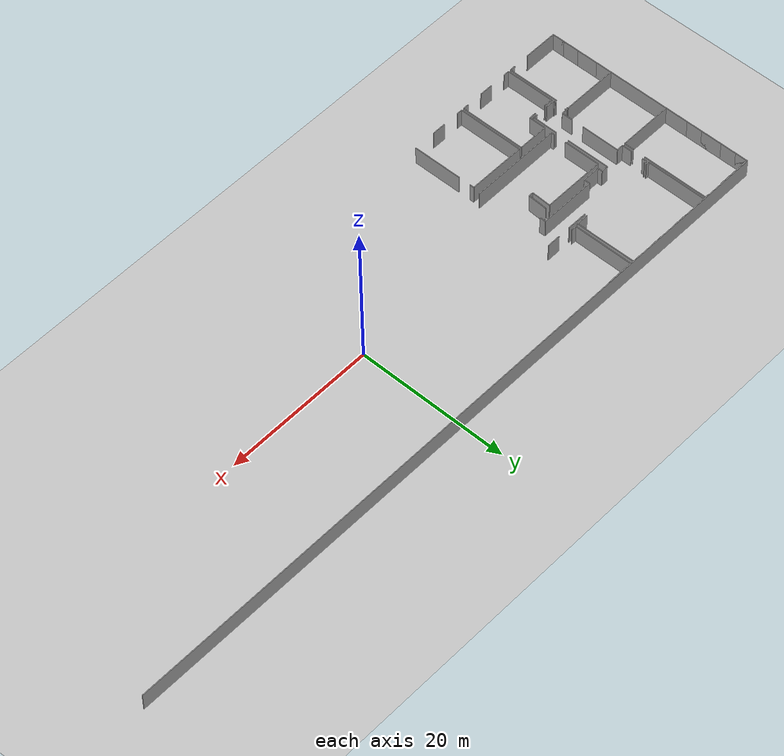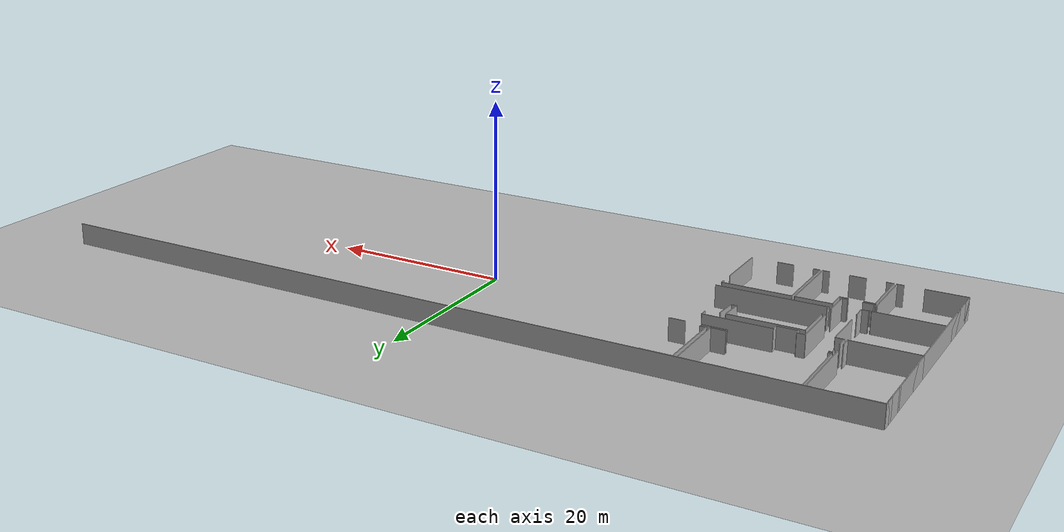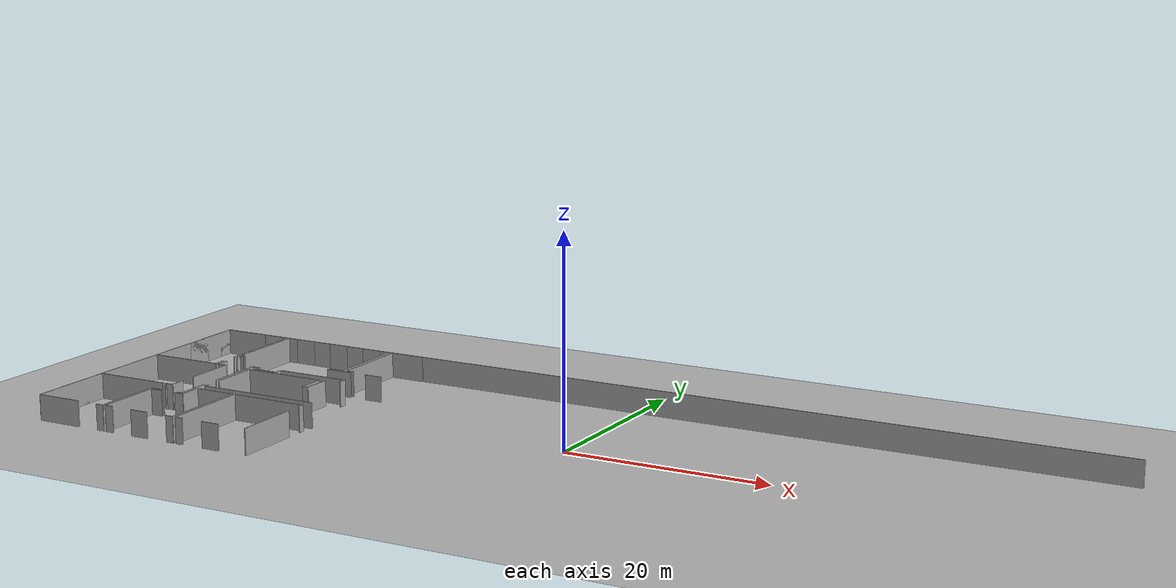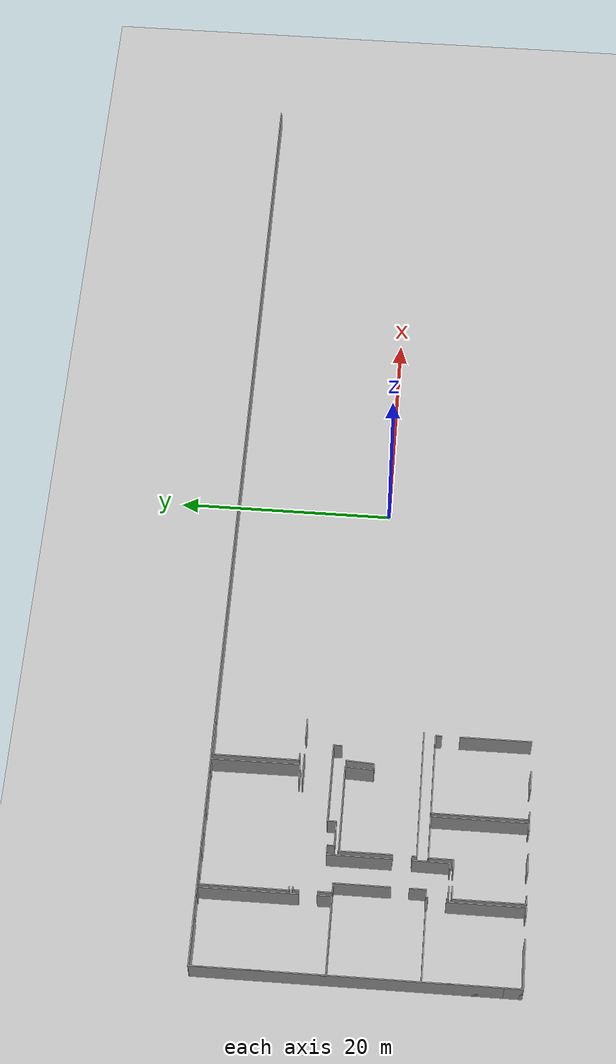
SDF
<sdf version="1.6">
 <world name="default">
  <model name="ground_plane">
   <static>1</static>
   <link name="link">
    <collision name="collision">
     <geometry><plane><normal>0 0 1</normal><size>100 100</size></plane></geometry>
     <surface><friction><ode><mu>100</mu><mu2>50</mu2></ode></friction></surface>
    </collision>
    <visual name="visual">
     <cast_shadows>0</cast_shadows>
     <geometry><plane><normal>0 0 1</normal><size>100 100</size></plane></geometry>
     <material>
      <script><uri>file://media/materials/scripts/gazebo.material</uri><name>Gazebo/Grey</name></script>
     </material>
    </visual>
   </link>
  </model>
  <model name="0510032262_A_40_1_104">
   <static>1</static>
   <link name="Wall_0">
    <collision name="Wall_0_Collision">
     <geometry><box><size>7.26845829235 0.1 2.5</size></box></geometry>
     <pose>3.63422914618 0 1.25 0 0 0</pose>
    </collision>
    <visual name="Wall_0_Visual">
     <pose>3.63422914618 0 1.25 0 0 0</pose>
     <geometry><box><size>7.26845829235 0.1 2.5</size></box></geometry>
     <material>
      <script><uri>file://media/materials/scripts/gazebo.material</uri><name>Gazebo/Grey</name></script>
      <ambient>1 1 1 1</ambient>
     </material>
    </visual>
    <pose>7.26845829235 -11.874861186 0 0 0 3.14159265359</pose>
   </link>
   <link name="Wall_1">
    <collision name="Wall_1_Collision">
     <geometry><box><size>3.11844401434 0.1 2.5</size></box></geometry>
     <pose>1.55922200717 0 1.25 0 0 0</pose>
    </collision>
    <visual name="Wall_1_Visual">
     <pose>1.55922200717 0 1.25 0 0 0</pose>
     <geometry><box><size>3.11844401434 0.1 2.5</size></box></geometry>
     <material>
      <script><uri>file://media/materials/scripts/gazebo.material</uri><name>Gazebo/Grey</name></script>
      <ambient>1 1 1 1</ambient>
     </material>
    </visual>
    <pose>0.0 -11.874861186 0 0 0 1.57079632679</pose>
   </link>
   <link name="Wall_2">
    <collision name="Wall_2_Collision">
     <geometry><box><size>2.82285750547 0.1 2.5</size></box></geometry>
     <pose>1.41142875274 0 1.25 0 0 0</pose>
    </collision>
    <visual name="Wall_2_Visual">
     <pose>1.41142875274 0 1.25 0 0 0</pose>
     <geometry><box><size>2.82285750547 0.1 2.5</size></box></geometry>
     <material>
      <script><uri>file://media/materials/scripts/gazebo.material</uri><name>Gazebo/Grey</name></script>
      <ambient>1 1 1 1</ambient>
     </material>
    </visual>
    <pose>0.0 -6.63032649047 0 0 0 1.57079632679</pose>
   </link>
   <link name="Wall_3">
    <collision name="Wall_3_Collision">
     <geometry><box><size>1.63987689184 0.1 2.5</size></box></geometry>
     <pose>0.819938445918 0 1.25 0 0 0</pose>
    </collision>
    <visual name="Wall_3_Visual">
     <pose>0.819938445918 0 1.25 0 0 0</pose>
     <geometry><box><size>1.63987689184 0.1 2.5</size></box></geometry>
     <material>
      <script><uri>file://media/materials/scripts/gazebo.material</uri><name>Gazebo/Grey</name></script>
      <ambient>1 1 1 1</ambient>
     </material>
    </visual>
    <pose>0.0 -1.69584668592 0 0 0 1.57079632679</pose>
   </link>
   <link name="Wall_4">
    <collision name="Wall_4_Collision">
     <geometry><box><size>4.5400260177 0.1 2.5</size></box></geometry>
     <pose>2.27001300885 0 1.25 0 0 0</pose>
    </collision>
    <visual name="Wall_4_Visual">
     <pose>2.27001300885 0 1.25 0 0 0</pose>
     <geometry><box><size>4.5400260177 0.1 2.5</size></box></geometry>
     <material>
      <script><uri>file://media/materials/scripts/gazebo.material</uri><name>Gazebo/Grey</name></script>
      <ambient>1 1 1 1</ambient>
     </material>
    </visual>
    <pose>0.0 -0.0559697940794 0 0 0 0.0</pose>
   </link>
   <link name="Wall_5">
    <collision name="Wall_5_Collision">
     <geometry><box><size>0.587873211283 0.1 2.5</size></box></geometry>
     <pose>0.293936605641 0 1.25 0 0 0</pose>
    </collision>
    <visual name="Wall_5_Visual">
     <pose>0.293936605641 0 1.25 0 0 0</pose>
     <geometry><box><size>0.587873211283 0.1 2.5</size></box></geometry>
     <material>
      <script><uri>file://media/materials/scripts/gazebo.material</uri><name>Gazebo/Grey</name></script>
      <ambient>1 1 1 1</ambient>
     </material>
    </visual>
    <pose>6.66611669892 -0.0559697940794 0 0 0 0.0</pose>
   </link>
   <link name="Wall_6">
    <collision name="Wall_6_Collision">
     <geometry><box><size>8.90338547451 0.1 2.5</size></box></geometry>
     <pose>4.45169273725 0 1.25 0 0 0</pose>
    </collision>
    <visual name="Wall_6_Visual">
     <pose>4.45169273725 0 1.25 0 0 0</pose>
     <geometry><box><size>8.90338547451 0.1 2.5</size></box></geometry>
     <material>
      <script><uri>file://media/materials/scripts/gazebo.material</uri><name>Gazebo/Grey</name></script>
      <ambient>1 1 1 1</ambient>
     </material>
    </visual>
    <pose>7.25398991021 -0.0559697940794 0 0 0 -1.57079632679</pose>
   </link>
   <link name="Wall_7">
    <collision name="Wall_7_Collision">
     <geometry><box><size>1.3018540469 0.1 2.5</size></box></geometry>
     <pose>0.650927023448 0 1.25 0 0 0</pose>
    </collision>
    <visual name="Wall_7_Visual">
     <pose>0.650927023448 0 1.25 0 0 0</pose>
     <geometry><box><size>1.3018540469 0.1 2.5</size></box></geometry>
     <material>
      <script><uri>file://media/materials/scripts/gazebo.material</uri><name>Gazebo/Grey</name></script>
      <ambient>1 1 1 1</ambient>
     </material>
    </visual>
    <pose>7.25398991021 -10.5730875401 0 0 0 -1.55968242349</pose>
   </link>
   <link name="Wall_8">
    <collision name="Wall_8_Collision">
     <geometry><box><size>0.55144842466 0.1 2.5</size></box></geometry>
     <pose>0.27572421233 0 1.25 0 0 0</pose>
    </collision>
    <visual name="Wall_8_Visual">
     <pose>0.27572421233 0 1.25 0 0 0</pose>
     <geometry><box><size>0.55144842466 0.1 2.5</size></box></geometry>
     <material>
      <script><uri>file://media/materials/scripts/gazebo.material</uri><name>Gazebo/Grey</name></script>
      <ambient>1 1 1 1</ambient>
     </material>
    </visual>
    <pose>11.1216169052 -22.0429609417 0 0 0 3.14159265359</pose>
   </link>
   <link name="Wall_9">
    <collision name="Wall_9_Collision">
     <geometry><box><size>1.21001364343 0.1 2.5</size></box></geometry>
     <pose>0.605006821715 0 1.25 0 0 0</pose>
    </collision>
    <visual name="Wall_9_Visual">
     <pose>0.605006821715 0 1.25 0 0 0</pose>
     <geometry><box><size>1.21001364343 0.1 2.5</size></box></geometry>
     <material>
      <script><uri>file://media/materials/scripts/gazebo.material</uri><name>Gazebo/Grey</name></script>
      <ambient>1 1 1 1</ambient>
     </material>
    </visual>
    <pose>8.97915410731 -22.0429609417 0 0 0 3.14159265359</pose>
   </link>
   <link name="Wall_10">
    <collision name="Wall_10_Collision">
     <geometry><box><size>0.17920487356 0.1 2.5</size></box></geometry>
     <pose>0.0896024367801 0 1.25 0 0 0</pose>
    </collision>
    <visual name="Wall_10_Visual">
     <pose>0.0896024367801 0 1.25 0 0 0</pose>
     <geometry><box><size>0.17920487356 0.1 2.5</size></box></geometry>
     <material>
      <script><uri>file://media/materials/scripts/gazebo.material</uri><name>Gazebo/Grey</name></script>
      <ambient>1 1 1 1</ambient>
     </material>
    </visual>
    <pose>7.76914046388 -22.0429609417 0 0 0 1.57079632679</pose>
   </link>
   <link name="Wall_11">
    <collision name="Wall_11_Collision">
     <geometry><box><size>0.203065012533 0.1 2.5</size></box></geometry>
     <pose>0.101532506266 0 1.25 0 0 0</pose>
    </collision>
    <visual name="Wall_11_Visual">
     <pose>0.101532506266 0 1.25 0 0 0</pose>
     <geometry><box><size>0.203065012533 0.1 2.5</size></box></geometry>
     <material>
      <script><uri>file://media/materials/scripts/gazebo.material</uri><name>Gazebo/Grey</name></script>
      <ambient>1 1 1 1</ambient>
     </material>
    </visual>
    <pose>7.76914046388 -20.2814988736 0 0 0 1.57079632679</pose>
   </link>
   <link name="Wall_12">
    <collision name="Wall_12_Collision">
     <geometry><box><size>0.723672938414 0.1 2.5</size></box></geometry>
     <pose>0.361836469207 0 1.25 0 0 0</pose>
    </collision>
    <visual name="Wall_12_Visual">
     <pose>0.361836469207 0 1.25 0 0 0</pose>
     <geometry><box><size>0.723672938414 0.1 2.5</size></box></geometry>
     <material>
      <script><uri>file://media/materials/scripts/gazebo.material</uri><name>Gazebo/Grey</name></script>
      <ambient>1 1 1 1</ambient>
     </material>
    </visual>
    <pose>7.76914046388 -20.0784338611 0 0 0 0.0</pose>
   </link>
   <link name="Wall_13">
    <collision name="Wall_13_Collision">
     <geometry><box><size>1.51473807786 0.1 2.5</size></box></geometry>
     <pose>0.757369038931 0 1.25 0 0 0</pose>
    </collision>
    <visual name="Wall_13_Visual">
     <pose>0.757369038931 0 1.25 0 0 0</pose>
     <geometry><box><size>1.51473807786 0.1 2.5</size></box></geometry>
     <material>
      <script><uri>file://media/materials/scripts/gazebo.material</uri><name>Gazebo/Grey</name></script>
      <ambient>1 1 1 1</ambient>
     </material>
    </visual>
    <pose>8.49281340229 -20.0784338611 0 0 0 1.57079632679</pose>
   </link>
   <link name="Wall_14">
    <collision name="Wall_14_Collision">
     <geometry><box><size>5.11013104039 0.1 2.5</size></box></geometry>
     <pose>2.5550655202 0 1.25 0 0 0</pose>
    </collision>
    <visual name="Wall_14_Visual">
     <pose>2.5550655202 0 1.25 0 0 0</pose>
     <geometry><box><size>5.11013104039 0.1 2.5</size></box></geometry>
     <material>
      <script><uri>file://media/materials/scripts/gazebo.material</uri><name>Gazebo/Grey</name></script>
      <ambient>1 1 1 1</ambient>
     </material>
    </visual>
    <pose>8.49281340229 -16.9898150205 0 0 0 1.57079632679</pose>
   </link>
   <link name="Wall_15">
    <collision name="Wall_15_Collision">
     <geometry><box><size>0.889297839261 0.1 2.5</size></box></geometry>
     <pose>0.444648919631 0 1.25 0 0 0</pose>
    </collision>
    <visual name="Wall_15_Visual">
     <pose>0.444648919631 0 1.25 0 0 0</pose>
     <geometry><box><size>0.889297839261 0.1 2.5</size></box></geometry>
     <material>
      <script><uri>file://media/materials/scripts/gazebo.material</uri><name>Gazebo/Grey</name></script>
      <ambient>1 1 1 1</ambient>
     </material>
    </visual>
    <pose>8.49281340229 -11.8796839801 0 0 0 3.14159265359</pose>
   </link>
   <link name="Wall_16">
    <collision name="Wall_16_Collision">
     <geometry><box><size>1.3100231621 0.1 2.5</size></box></geometry>
     <pose>0.655011581051 0 1.25 0 0 0</pose>
    </collision>
    <visual name="Wall_16_Visual">
     <pose>0.655011581051 0 1.25 0 0 0</pose>
     <geometry><box><size>1.3100231621 0.1 2.5</size></box></geometry>
     <material>
      <script><uri>file://media/materials/scripts/gazebo.material</uri><name>Gazebo/Grey</name></script>
      <ambient>1 1 1 1</ambient>
     </material>
    </visual>
    <pose>7.60351556303 -11.8796839801 0 0 0 1.57079632679</pose>
   </link>
   <link name="Wall_17">
    <collision name="Wall_17_Collision">
     <geometry><box><size>0.561601675286 0.1 2.5</size></box></geometry>
     <pose>0.280800837643 0 1.25 0 0 0</pose>
    </collision>
    <visual name="Wall_17_Visual">
     <pose>0.280800837643 0 1.25 0 0 0</pose>
     <geometry><box><size>0.561601675286 0.1 2.5</size></box></geometry>
     <material>
      <script><uri>file://media/materials/scripts/gazebo.material</uri><name>Gazebo/Grey</name></script>
      <ambient>1 1 1 1</ambient>
     </material>
    </visual>
    <pose>7.60351556303 -8.95833994352 0 0 0 1.57079632679</pose>
   </link>
   <link name="Wall_18">
    <collision name="Wall_18_Collision">
     <geometry><box><size>0.356759843894 0.1 2.5</size></box></geometry>
     <pose>0.178379921947 0 1.25 0 0 0</pose>
    </collision>
    <visual name="Wall_18_Visual">
     <pose>0.178379921947 0 1.25 0 0 0</pose>
     <geometry><box><size>0.356759843894 0.1 2.5</size></box></geometry>
     <material>
      <script><uri>file://media/materials/scripts/gazebo.material</uri><name>Gazebo/Grey</name></script>
      <ambient>1 1 1 1</ambient>
     </material>
    </visual>
    <pose>7.60351556303 -8.39673826824 0 0 0 0.0</pose>
   </link>
   <link name="Wall_19">
    <collision name="Wall_19_Collision">
     <geometry><box><size>2.68705777834 0.1 2.5</size></box></geometry>
     <pose>1.34352888917 0 1.25 0 0 0</pose>
    </collision>
    <visual name="Wall_19_Visual">
     <pose>1.34352888917 0 1.25 0 0 0</pose>
     <geometry><box><size>2.68705777834 0.1 2.5</size></box></geometry>
     <material>
      <script><uri>file://media/materials/scripts/gazebo.material</uri><name>Gazebo/Grey</name></script>
      <ambient>1 1 1 1</ambient>
     </material>
    </visual>
    <pose>18.0830662817 -8.39673826824 0 0 0 0.0</pose>
   </link>
   <link name="Wall_20">
    <collision name="Wall_20_Collision">
     <geometry><box><size>1.77986483485 0.1 2.5</size></box></geometry>
     <pose>0.889932417426 0 1.25 0 0 0</pose>
    </collision>
    <visual name="Wall_20_Visual">
     <pose>0.889932417426 0 1.25 0 0 0</pose>
     <geometry><box><size>1.77986483485 0.1 2.5</size></box></geometry>
     <material>
      <script><uri>file://media/materials/scripts/gazebo.material</uri><name>Gazebo/Grey</name></script>
      <ambient>1 1 1 1</ambient>
     </material>
    </visual>
    <pose>22.4537868452 -8.39673826824 0 0 0 0.0</pose>
   </link>
   <link name="Wall_39">
    <collision name="Wall_39_Collision">
     <geometry><box><size>0.79652251166 0.1 2.5</size></box></geometry>
     <pose>0.39826125583 0 1.25 0 0 0</pose>
    </collision>
    <visual name="Wall_39_Visual">
     <pose>0.39826125583 0 1.25 0 0 0</pose>
     <geometry><box><size>0.79652251166 0.1 2.5</size></box></geometry>
     <material>
      <script><uri>file://media/materials/scripts/gazebo.material</uri><name>Gazebo/Grey</name></script>
      <ambient>1 1 1 1</ambient>
     </material>
    </visual>
    <pose>21.8065171177 -11.750103119 0 0 0 1.57079632679</pose>
   </link>
   <link name="Wall_40">
    <collision name="Wall_40_Collision">
     <geometry><box><size>7.44131738427 0.1 2.5</size></box></geometry>
     <pose>3.72065869213 0 1.25 0 0 0</pose>
    </collision>
    <visual name="Wall_40_Visual">
     <pose>3.72065869213 0 1.25 0 0 0</pose>
     <geometry><box><size>7.44131738427 0.1 2.5</size></box></geometry>
     <material>
      <script><uri>file://media/materials/scripts/gazebo.material</uri><name>Gazebo/Grey</name></script>
      <ambient>1 1 1 1</ambient>
     </material>
    </visual>
    <pose>21.8065171177 -10.9535806073 0 0 0 3.14159265359</pose>
   </link>
   <link name="Wall_41">
    <collision name="Wall_41_Collision">
     <geometry><box><size>0.770758638195 0.1 2.5</size></box></geometry>
     <pose>0.385379319098 0 1.25 0 0 0</pose>
    </collision>
    <visual name="Wall_41_Visual">
     <pose>0.385379319098 0 1.25 0 0 0</pose>
     <geometry><box><size>0.770758638195 0.1 2.5</size></box></geometry>
     <material>
      <script><uri>file://media/materials/scripts/gazebo.material</uri><name>Gazebo/Grey</name></script>
      <ambient>1 1 1 1</ambient>
     </material>
    </visual>
    <pose>14.3651997335 -10.9535806073 0 0 0 -1.57079632679</pose>
   </link>
   <link name="Wall_42">
    <collision name="Wall_42_Collision">
     <geometry><box><size>2.32928260939 0.1 2.5</size></box></geometry>
     <pose>1.16464130469 0 1.25 0 0 0</pose>
    </collision>
    <visual name="Wall_42_Visual">
     <pose>1.16464130469 0 1.25 0 0 0</pose>
     <geometry><box><size>2.32928260939 0.1 2.5</size></box></geometry>
     <material>
      <script><uri>file://media/materials/scripts/gazebo.material</uri><name>Gazebo/Grey</name></script>
      <ambient>1 1 1 1</ambient>
     </material>
    </visual>
    <pose>14.3651997335 -11.7243392455 0 0 0 3.14159265359</pose>
   </link>
   <link name="Wall_43">
    <collision name="Wall_43_Collision">
     <geometry><box><size>0.616809975569 0.1 2.5</size></box></geometry>
     <pose>0.308404987784 0 1.25 0 0 0</pose>
    </collision>
    <visual name="Wall_43_Visual">
     <pose>0.308404987784 0 1.25 0 0 0</pose>
     <geometry><box><size>0.616809975569 0.1 2.5</size></box></geometry>
     <material>
      <script><uri>file://media/materials/scripts/gazebo.material</uri><name>Gazebo/Grey</name></script>
      <ambient>1 1 1 1</ambient>
     </material>
    </visual>
    <pose>12.0359171241 -11.7243392455 0 0 0 1.57079632679</pose>
   </link>
   <link name="Wall_44">
    <collision name="Wall_44_Collision">
     <geometry><box><size>0.878002347939 0.1 2.5</size></box></geometry>
     <pose>0.43900117397 0 1.25 0 0 0</pose>
    </collision>
    <visual name="Wall_44_Visual">
     <pose>0.43900117397 0 1.25 0 0 0</pose>
     <geometry><box><size>0.878002347939 0.1 2.5</size></box></geometry>
     <material>
      <script><uri>file://media/materials/scripts/gazebo.material</uri><name>Gazebo/Grey</name></script>
      <ambient>1 1 1 1</ambient>
     </material>
    </visual>
    <pose>12.0359171241 -11.1075292699 0 0 0 3.14159265359</pose>
   </link>
   <link name="Wall_45">
    <collision name="Wall_45_Collision">
     <geometry><box><size>5.80562870832 0.1 2.5</size></box></geometry>
     <pose>2.90281435416 0 1.25 0 0 0</pose>
    </collision>
    <visual name="Wall_45_Visual">
     <pose>2.90281435416 0 1.25 0 0 0</pose>
     <geometry><box><size>5.80562870832 0.1 2.5</size></box></geometry>
     <material>
      <script><uri>file://media/materials/scripts/gazebo.material</uri><name>Gazebo/Grey</name></script>
      <ambient>1 1 1 1</ambient>
     </material>
    </visual>
    <pose>11.1579147762 -11.1075292699 0 0 0 -1.57079632679</pose>
   </link>
   <link name="Wall_46">
    <collision name="Wall_46_Collision">
     <geometry><box><size>3.38173492852 0.1 2.5</size></box></geometry>
     <pose>1.69086746426 0 1.25 0 0 0</pose>
    </collision>
    <visual name="Wall_46_Visual">
     <pose>1.69086746426 0 1.25 0 0 0</pose>
     <geometry><box><size>3.38173492852 0.1 2.5</size></box></geometry>
     <material>
      <script><uri>file://media/materials/scripts/gazebo.material</uri><name>Gazebo/Grey</name></script>
      <ambient>1 1 1 1</ambient>
     </material>
    </visual>
    <pose>11.1579147762 -18.6614208205 0 0 0 -1.58153003856</pose>
   </link>
   <link name="Wall_48">
    <collision name="Wall_48_Collision">
     <geometry><box><size>0.690928705143 0.1 2.5</size></box></geometry>
     <pose>0.345464352572 0 1.25 0 0 0</pose>
    </collision>
    <visual name="Wall_48_Visual">
     <pose>0.345464352572 0 1.25 0 0 0</pose>
     <geometry><box><size>0.690928705143 0.1 2.5</size></box></geometry>
     <material>
      <script><uri>file://media/materials/scripts/gazebo.material</uri><name>Gazebo/Grey</name></script>
      <ambient>1 1 1 1</ambient>
     </material>
    </visual>
    <pose>20.7892883206 -7.97271313894 0 0 0 3.14159265359</pose>
   </link>
   <link name="Wall_49">
    <collision name="Wall_49_Collision">
     <geometry><box><size>7.9142050322 0.1 2.5</size></box></geometry>
     <pose>3.9571025161 0 1.25 0 0 0</pose>
    </collision>
    <visual name="Wall_49_Visual">
     <pose>3.9571025161 0 1.25 0 0 0</pose>
     <geometry><box><size>7.9142050322 0.1 2.5</size></box></geometry>
     <material>
      <script><uri>file://media/materials/scripts/gazebo.material</uri><name>Gazebo/Grey</name></script>
      <ambient>1 1 1 1</ambient>
     </material>
    </visual>
    <pose>20.0983596154 -7.97271313894 0 0 0 1.57079632679</pose>
   </link>
   <link name="Wall_50">
    <collision name="Wall_50_Collision">
     <geometry><box><size>3.526097027 0.1 2.5</size></box></geometry>
     <pose>1.7630485135 0 1.25 0 0 0</pose>
    </collision>
    <visual name="Wall_50_Visual">
     <pose>1.7630485135 0 1.25 0 0 0</pose>
     <geometry><box><size>3.526097027 0.1 2.5</size></box></geometry>
     <material>
      <script><uri>file://media/materials/scripts/gazebo.material</uri><name>Gazebo/Grey</name></script>
      <ambient>1 1 1 1</ambient>
     </material>
    </visual>
    <pose>20.0983596154 -0.058508106736 0 0 0 0.0</pose>
   </link>
   <link name="Wall_88">
    <collision name="Wall_88_Collision">
     <geometry><box><size>2.58827991481 0.1 2.5</size></box></geometry>
     <pose>1.29413995741 0 1.25 0 0 0</pose>
    </collision>
    <visual name="Wall_88_Visual">
     <pose>1.29413995741 0 1.25 0 0 0</pose>
     <geometry><box><size>2.58827991481 0.1 2.5</size></box></geometry>
     <material>
      <script><uri>file://media/materials/scripts/gazebo.material</uri><name>Gazebo/Grey</name></script>
      <ambient>1 1 1 1</ambient>
     </material>
    </visual>
    <pose>20.3699590697 -12.1516641812 0 0 0 -1.62829672246</pose>
   </link>
   <link name="Wall_89">
    <collision name="Wall_89_Collision">
     <geometry><box><size>0.587790814466 0.1 2.5</size></box></geometry>
     <pose>0.293895407233 0 1.25 0 0 0</pose>
    </collision>
    <visual name="Wall_89_Visual">
     <pose>0.293895407233 0 1.25 0 0 0</pose>
     <geometry><box><size>0.587790814466 0.1 2.5</size></box></geometry>
     <material>
      <script><uri>file://media/materials/scripts/gazebo.material</uri><name>Gazebo/Grey</name></script>
      <ambient>1 1 1 1</ambient>
     </material>
    </visual>
    <pose>20.221213948 -14.7356664657 0 0 0 3.12928491836</pose>
   </link>
   <link name="Wall_90">
    <collision name="Wall_90_Collision">
     <geometry><box><size>2.58584399931 0.1 2.5</size></box></geometry>
     <pose>1.29292199966 0 1.25 0 0 0</pose>
    </collision>
    <visual name="Wall_90_Visual">
     <pose>1.29292199966 0 1.25 0 0 0</pose>
     <geometry><box><size>2.58584399931 0.1 2.5</size></box></geometry>
     <material>
      <script><uri>file://media/materials/scripts/gazebo.material</uri><name>Gazebo/Grey</name></script>
      <ambient>1 1 1 1</ambient>
     </material>
    </visual>
    <pose>19.6334676524 -14.7284322746 0 0 0 1.52592129538</pose>
   </link>
   <link name="Wall_91">
    <collision name="Wall_91_Collision">
     <geometry><box><size>8.2017958562 0.1 2.5</size></box></geometry>
     <pose>4.1008979281 0 1.25 0 0 0</pose>
    </collision>
    <visual name="Wall_91_Visual">
     <pose>4.1008979281 0 1.25 0 0 0</pose>
     <geometry><box><size>8.2017958562 0.1 2.5</size></box></geometry>
     <material>
      <script><uri>file://media/materials/scripts/gazebo.material</uri><name>Gazebo/Grey</name></script>
      <ambient>1 1 1 1</ambient>
     </material>
    </visual>
    <pose>19.7494685408 -12.145191484 0 0 0 3.14159265359</pose>
   </link>
   <link name="Wall_92">
    <collision name="Wall_92_Collision">
     <geometry><box><size>4.81594060348 0.1 2.5</size></box></geometry>
     <pose>2.40797030174 0 1.25 0 0 0</pose>
    </collision>
    <visual name="Wall_92_Visual">
     <pose>2.40797030174 0 1.25 0 0 0</pose>
     <geometry><box><size>4.81594060348 0.1 2.5</size></box></geometry>
     <material>
      <script><uri>file://media/materials/scripts/gazebo.material</uri><name>Gazebo/Grey</name></script>
      <ambient>1 1 1 1</ambient>
     </material>
    </visual>
    <pose>11.5476726846 -12.145191484 0 0 0 -1.57079632679</pose>
   </link>
   <link name="Wall_93">
    <collision name="Wall_93_Collision">
     <geometry><box><size>0.469587841482 0.1 2.5</size></box></geometry>
     <pose>0.234793920741 0 1.25 0 0 0</pose>
    </collision>
    <visual name="Wall_93_Visual">
     <pose>0.234793920741 0 1.25 0 0 0</pose>
     <geometry><box><size>0.469587841482 0.1 2.5</size></box></geometry>
     <material>
      <script><uri>file://media/materials/scripts/gazebo.material</uri><name>Gazebo/Grey</name></script>
      <ambient>1 1 1 1</ambient>
     </material>
    </visual>
    <pose>11.5476726846 -18.6062125202 0 0 0 -1.57079632679</pose>
   </link>
   <link name="Wall_94">
    <collision name="Wall_94_Collision">
     <geometry><box><size>12.162351582 0.1 2.5</size></box></geometry>
     <pose>6.08117579101 0 1.25 0 0 0</pose>
    </collision>
    <visual name="Wall_94_Visual">
     <pose>6.08117579101 0 1.25 0 0 0</pose>
     <geometry><box><size>12.162351582 0.1 2.5</size></box></geometry>
     <material>
      <script><uri>file://media/materials/scripts/gazebo.material</uri><name>Gazebo/Grey</name></script>
      <ambient>1 1 1 1</ambient>
     </material>
    </visual>
    <pose>11.5476726846 -19.0758003617 0 0 0 0.00208702608391</pose>
   </link>
   <link name="Wall_95">
    <collision name="Wall_95_Collision">
     <geometry><box><size>0.752863533966 0.1 2.5</size></box></geometry>
     <pose>0.376431766983 0 1.25 0 0 0</pose>
    </collision>
    <visual name="Wall_95_Visual">
     <pose>0.376431766983 0 1.25 0 0 0</pose>
     <geometry><box><size>0.752863533966 0.1 2.5</size></box></geometry>
     <material>
      <script><uri>file://media/materials/scripts/gazebo.material</uri><name>Gazebo/Grey</name></script>
      <ambient>1 1 1 1</ambient>
     </material>
    </visual>
    <pose>7.46225846369 -28.8584573405 0 0 0 3.14159265359</pose>
   </link>
   <link name="Wall_96">
    <collision name="Wall_96_Collision">
     <geometry><box><size>4.55639813434 0.1 2.5</size></box></geometry>
     <pose>2.27819906717 0 1.25 0 0 0</pose>
    </collision>
    <visual name="Wall_96_Visual">
     <pose>2.27819906717 0 1.25 0 0 0</pose>
     <geometry><box><size>4.55639813434 0.1 2.5</size></box></geometry>
     <material>
      <script><uri>file://media/materials/scripts/gazebo.material</uri><name>Gazebo/Grey</name></script>
      <ambient>1 1 1 1</ambient>
     </material>
    </visual>
    <pose>4.55639813434 -28.8584573405 0 0 0 3.14159265359</pose>
   </link>
   <link name="Wall_97">
    <collision name="Wall_97_Collision">
     <geometry><box><size>1.65396452708 0.1 2.5</size></box></geometry>
     <pose>0.82698226354 0 1.25 0 0 0</pose>
    </collision>
    <visual name="Wall_97_Visual">
     <pose>0.82698226354 0 1.25 0 0 0</pose>
     <geometry><box><size>1.65396452708 0.1 2.5</size></box></geometry>
     <material>
      <script><uri>file://media/materials/scripts/gazebo.material</uri><name>Gazebo/Grey</name></script>
      <ambient>1 1 1 1</ambient>
     </material>
    </visual>
    <pose>0.0 -28.8584573405 0 0 0 1.57079632679</pose>
   </link>
   <link name="Wall_98">
    <collision name="Wall_98_Collision">
     <geometry><box><size>2.81219659232 0.1 2.5</size></box></geometry>
     <pose>1.40609829616 0 1.25 0 0 0</pose>
    </collision>
    <visual name="Wall_98_Visual">
     <pose>1.40609829616 0 1.25 0 0 0</pose>
     <geometry><box><size>2.81219659232 0.1 2.5</size></box></geometry>
     <material>
      <script><uri>file://media/materials/scripts/gazebo.material</uri><name>Gazebo/Grey</name></script>
      <ambient>1 1 1 1</ambient>
     </material>
    </visual>
    <pose>0.0 -25.0681219659 0 0 0 1.57079632679</pose>
   </link>
   <link name="Wall_99">
    <collision name="Wall_99_Collision">
     <geometry><box><size>7.46898499223 0.1 2.5</size></box></geometry>
     <pose>3.73449249611 0 1.25 0 0 0</pose>
    </collision>
    <visual name="Wall_99_Visual">
     <pose>3.73449249611 0 1.25 0 0 0</pose>
     <geometry><box><size>7.46898499223 0.1 2.5</size></box></geometry>
     <material>
      <script><uri>file://media/materials/scripts/gazebo.material</uri><name>Gazebo/Grey</name></script>
      <ambient>1 1 1 1</ambient>
     </material>
    </visual>
    <pose>0.0 -20.1196814418 0 0 0 0.0</pose>
   </link>
   <link name="Wall_100">
    <collision name="Wall_100_Collision">
     <geometry><box><size>0.134022908272 0.1 2.5</size></box></geometry>
     <pose>0.0670114541359 0 1.25 0 0 0</pose>
    </collision>
    <visual name="Wall_100_Visual">
     <pose>0.0670114541359 0 1.25 0 0 0</pose>
     <geometry><box><size>0.134022908272 0.1 2.5</size></box></geometry>
     <material>
      <script><uri>file://media/materials/scripts/gazebo.material</uri><name>Gazebo/Grey</name></script>
      <ambient>1 1 1 1</ambient>
     </material>
    </visual>
    <pose>7.46898499223 -20.1196814418 0 0 0 -1.57079632679</pose>
   </link>
   <link name="Wall_101">
    <collision name="Wall_101_Collision">
     <geometry><box><size>7.00308093455 0.1 2.5</size></box></geometry>
     <pose>3.50154046727 0 1.25 0 0 0</pose>
    </collision>
    <visual name="Wall_101_Visual">
     <pose>3.50154046727 0 1.25 0 0 0</pose>
     <geometry><box><size>7.00308093455 0.1 2.5</size></box></geometry>
     <material>
      <script><uri>file://media/materials/scripts/gazebo.material</uri><name>Gazebo/Grey</name></script>
      <ambient>1 1 1 1</ambient>
     </material>
    </visual>
    <pose>7.46898499223 -21.8553796364 0 0 0 -1.57175683684</pose>
   </link>
   <link name="Wall_102">
    <collision name="Wall_102_Collision">
     <geometry><box><size>0.750452136942 0.1 2.5</size></box></geometry>
     <pose>0.375226068471 0 1.25 0 0 0</pose>
    </collision>
    <visual name="Wall_102_Visual">
     <pose>0.375226068471 0 1.25 0 0 0</pose>
     <geometry><box><size>0.750452136942 0.1 2.5</size></box></geometry>
     <material>
      <script><uri>file://media/materials/scripts/gazebo.material</uri><name>Gazebo/Grey</name></script>
      <ambient>1 1 1 1</ambient>
     </material>
    </visual>
    <pose>15.4588317416 -28.8604879906 0 0 0 3.14159265359</pose>
   </link>
   <link name="Wall_103">
    <collision name="Wall_103_Collision">
     <geometry><box><size>1.82618904084 0.1 2.5</size></box></geometry>
     <pose>0.913094520418 0 1.25 0 0 0</pose>
    </collision>
    <visual name="Wall_103_Visual">
     <pose>0.913094520418 0 1.25 0 0 0</pose>
     <geometry><box><size>1.82618904084 0.1 2.5</size></box></geometry>
     <material>
      <script><uri>file://media/materials/scripts/gazebo.material</uri><name>Gazebo/Grey</name></script>
      <ambient>1 1 1 1</ambient>
     </material>
    </visual>
    <pose>12.5341878986 -28.8604879906 0 0 0 3.14159265359</pose>
   </link>
   <link name="Wall_104">
    <collision name="Wall_104_Collision">
     <geometry><box><size>0.805406605959 0.1 2.5</size></box></geometry>
     <pose>0.402703302979 0 1.25 0 0 0</pose>
    </collision>
    <visual name="Wall_104_Visual">
     <pose>0.402703302979 0 1.25 0 0 0</pose>
     <geometry><box><size>0.805406605959 0.1 2.5</size></box></geometry>
     <material>
      <script><uri>file://media/materials/scripts/gazebo.material</uri><name>Gazebo/Grey</name></script>
      <ambient>1 1 1 1</ambient>
     </material>
    </visual>
    <pose>8.57454706984 -28.8604879906 0 0 0 3.14159265359</pose>
   </link>
   <link name="Wall_105">
    <collision name="Wall_105_Collision">
     <geometry><box><size>6.51876764921 0.1 2.5</size></box></geometry>
     <pose>3.2593838246 0 1.25 0 0 0</pose>
    </collision>
    <visual name="Wall_105_Visual">
     <pose>3.2593838246 0 1.25 0 0 0</pose>
     <geometry><box><size>6.51876764921 0.1 2.5</size></box></geometry>
     <material>
      <script><uri>file://media/materials/scripts/gazebo.material</uri><name>Gazebo/Grey</name></script>
      <ambient>1 1 1 1</ambient>
     </material>
    </visual>
    <pose>7.76914046388 -28.8604879906 0 0 0 1.57079632679</pose>
   </link>
   <link name="Wall_106">
    <collision name="Wall_106_Collision">
     <geometry><box><size>1.18818415458 0.1 2.5</size></box></geometry>
     <pose>0.594092077292 0 1.25 0 0 0</pose>
    </collision>
    <visual name="Wall_106_Visual">
     <pose>0.594092077292 0 1.25 0 0 0</pose>
     <geometry><box><size>1.18818415458 0.1 2.5</size></box></geometry>
     <material>
      <script><uri>file://media/materials/scripts/gazebo.material</uri><name>Gazebo/Grey</name></script>
      <ambient>1 1 1 1</ambient>
     </material>
    </visual>
    <pose>7.76914046388 -22.3417203414 0 0 0 0.0</pose>
   </link>
   <link name="Wall_107">
    <collision name="Wall_107_Collision">
     <geometry><box><size>0.921280578735 0.1 2.5</size></box></geometry>
     <pose>0.460640289368 0 1.25 0 0 0</pose>
    </collision>
    <visual name="Wall_107_Visual">
     <pose>0.460640289368 0 1.25 0 0 0</pose>
     <geometry><box><size>0.921280578735 0.1 2.5</size></box></geometry>
     <material>
      <script><uri>file://media/materials/scripts/gazebo.material</uri><name>Gazebo/Grey</name></script>
      <ambient>1 1 1 1</ambient>
     </material>
    </visual>
    <pose>10.549608148 -22.3417203414 0 0 0 0.0</pose>
   </link>
   <link name="Wall_108">
    <collision name="Wall_108_Collision">
     <geometry><box><size>2.23295364407 0.1 2.5</size></box></geometry>
     <pose>1.11647682203 0 1.25 0 0 0</pose>
    </collision>
    <visual name="Wall_108_Visual">
     <pose>1.11647682203 0 1.25 0 0 0</pose>
     <geometry><box><size>2.23295364407 0.1 2.5</size></box></geometry>
     <material>
      <script><uri>file://media/materials/scripts/gazebo.material</uri><name>Gazebo/Grey</name></script>
      <ambient>1 1 1 1</ambient>
     </material>
    </visual>
    <pose>11.4708887267 -22.3417203414 0 0 0 1.57079632679</pose>
   </link>
   <link name="Wall_109">
    <collision name="Wall_109_Collision">
     <geometry><box><size>4.00190373449 0.1 2.5</size></box></geometry>
     <pose>2.00095186725 0 1.25 0 0 0</pose>
    </collision>
    <visual name="Wall_109_Visual">
     <pose>2.00095186725 0 1.25 0 0 0</pose>
     <geometry><box><size>4.00190373449 0.1 2.5</size></box></geometry>
     <material>
      <script><uri>file://media/materials/scripts/gazebo.material</uri><name>Gazebo/Grey</name></script>
      <ambient>1 1 1 1</ambient>
     </material>
    </visual>
    <pose>11.4708887267 -20.1087666973 0 0 0 0.0</pose>
   </link>
   <link name="Wall_110">
    <collision name="Wall_110_Collision">
     <geometry><box><size>8.75173242831 0.1 2.5</size></box></geometry>
     <pose>4.37586621416 0 1.25 0 0 0</pose>
    </collision>
    <visual name="Wall_110_Visual">
     <pose>4.37586621416 0 1.25 0 0 0</pose>
     <geometry><box><size>8.75173242831 0.1 2.5</size></box></geometry>
     <material>
      <script><uri>file://media/materials/scripts/gazebo.material</uri><name>Gazebo/Grey</name></script>
      <ambient>1 1 1 1</ambient>
     </material>
    </visual>
    <pose>15.4727924612 -20.1087666973 0 0 0 -1.57239152245</pose>
   </link>
   <link name="Wall_112">
    <collision name="Wall_112_Collision">
     <geometry><box><size>1.84256115747 0.1 2.5</size></box></geometry>
     <pose>0.921280578735 0 1.25 0 0 0</pose>
    </collision>
    <visual name="Wall_112_Visual">
     <pose>0.921280578735 0 1.25 0 0 0</pose>
     <geometry><box><size>1.84256115747 0.1 2.5</size></box></geometry>
     <material>
      <script><uri>file://media/materials/scripts/gazebo.material</uri><name>Gazebo/Grey</name></script>
      <ambient>1 1 1 1</ambient>
     </material>
    </visual>
    <pose>20.5360916331 -28.8584573405 0 0 0 3.14159265359</pose>
   </link>
   <link name="Wall_113">
    <collision name="Wall_113_Collision">
     <geometry><box><size>0.75083288384 0.1 2.5</size></box></geometry>
     <pose>0.37541644192 0 1.25 0 0 0</pose>
    </collision>
    <visual name="Wall_113_Visual">
     <pose>0.37541644192 0 1.25 0 0 0</pose>
     <geometry><box><size>0.75083288384 0.1 2.5</size></box></geometry>
     <material>
      <script><uri>file://media/materials/scripts/gazebo.material</uri><name>Gazebo/Grey</name></script>
      <ambient>1 1 1 1</ambient>
     </material>
    </visual>
    <pose>16.5292381889 -28.8584573405 0 0 0 3.14159265359</pose>
   </link>
   <link name="Wall_114">
    <collision name="Wall_114_Collision">
     <geometry><box><size>8.74715233049 0.1 2.5</size></box></geometry>
     <pose>4.37357616524 0 1.25 0 0 0</pose>
    </collision>
    <visual name="Wall_114_Visual">
     <pose>4.37357616524 0 1.25 0 0 0</pose>
     <geometry><box><size>8.74715233049 0.1 2.5</size></box></geometry>
     <material>
      <script><uri>file://media/materials/scripts/gazebo.material</uri><name>Gazebo/Grey</name></script>
      <ambient>1 1 1 1</ambient>
     </material>
    </visual>
    <pose>15.7784053051 -28.8584573405 0 0 0 1.57079632679</pose>
   </link>
   <link name="Wall_115">
    <collision name="Wall_115_Collision">
     <geometry><box><size>7.6625313323 0.1 2.5</size></box></geometry>
     <pose>3.83126566615 0 1.25 0 0 0</pose>
    </collision>
    <visual name="Wall_115_Visual">
     <pose>3.83126566615 0 1.25 0 0 0</pose>
     <geometry><box><size>7.6625313323 0.1 2.5</size></box></geometry>
     <material>
      <script><uri>file://media/materials/scripts/gazebo.material</uri><name>Gazebo/Grey</name></script>
      <ambient>1 1 1 1</ambient>
     </material>
    </visual>
    <pose>15.7784053051 -20.11130501 0 0 0 0.0</pose>
   </link>
   <link name="Wall_116">
    <collision name="Wall_116_Collision">
     <geometry><box><size>0.584065742298 0.1 2.5</size></box></geometry>
     <pose>0.292032871149 0 1.25 0 0 0</pose>
    </collision>
    <visual name="Wall_116_Visual">
     <pose>0.292032871149 0 1.25 0 0 0</pose>
     <geometry><box><size>0.584065742298 0.1 2.5</size></box></geometry>
     <material>
      <script><uri>file://media/materials/scripts/gazebo.material</uri><name>Gazebo/Grey</name></script>
      <ambient>1 1 1 1</ambient>
     </material>
    </visual>
    <pose>23.4409366374 -20.11130501 0 0 0 -1.57079632679</pose>
   </link>
   <link name="Wall_117">
    <collision name="Wall_117_Collision">
     <geometry><box><size>6.55115523126 0.1 2.5</size></box></geometry>
     <pose>3.27557761563 0 1.25 0 0 0</pose>
    </collision>
    <visual name="Wall_117_Visual">
     <pose>3.27557761563 0 1.25 0 0 0</pose>
     <geometry><box><size>6.55115523126 0.1 2.5</size></box></geometry>
     <material>
      <script><uri>file://media/materials/scripts/gazebo.material</uri><name>Gazebo/Grey</name></script>
      <ambient>1 1 1 1</ambient>
     </material>
    </visual>
    <pose>23.4409366374 -22.3073262049 0 0 0 -1.56808410128</pose>
   </link>
   <link name="Wall_339">
    <collision name="Wall_339_Collision">
     <geometry><box><size>1.58339943523 0.1 2.5</size></box></geometry>
     <pose>0.791699717613 0 1.25 0 0 0</pose>
    </collision>
    <visual name="Wall_339_Visual">
     <pose>0.791699717613 0 1.25 0 0 0</pose>
     <geometry><box><size>1.58339943523 0.1 2.5</size></box></geometry>
     <material>
      <script><uri>file://media/materials/scripts/gazebo.material</uri><name>Gazebo/Grey</name></script>
      <ambient>1 1 1 1</ambient>
     </material>
    </visual>
    <pose>19.6856299775 -8.09379065266 0 0 0 3.14159265359</pose>
   </link>
   <link name="Wall_340">
    <collision name="Wall_340_Collision">
     <geometry><box><size>0.408414506457 0.1 2.5</size></box></geometry>
     <pose>0.204207253228 0 1.25 0 0 0</pose>
    </collision>
    <visual name="Wall_340_Visual">
     <pose>0.204207253228 0 1.25 0 0 0</pose>
     <geometry><box><size>0.408414506457 0.1 2.5</size></box></geometry>
     <material>
      <script><uri>file://media/materials/scripts/gazebo.material</uri><name>Gazebo/Grey</name></script>
      <ambient>1 1 1 1</ambient>
     </material>
    </visual>
    <pose>7.95431037218 -8.09379065266 0 0 0 3.14159265359</pose>
   </link>
   <link name="Wall_341">
    <collision name="Wall_341_Collision">
     <geometry><box><size>8.06409239458 0.1 2.5</size></box></geometry>
     <pose>4.03204619729 0 1.25 0 0 0</pose>
    </collision>
    <visual name="Wall_341_Visual">
     <pose>4.03204619729 0 1.25 0 0 0</pose>
     <geometry><box><size>8.06409239458 0.1 2.5</size></box></geometry>
     <material>
      <script><uri>file://media/materials/scripts/gazebo.material</uri><name>Gazebo/Grey</name></script>
      <ambient>1 1 1 1</ambient>
     </material>
    </visual>
    <pose>7.54589586572 -8.09379065266 0 0 0 1.57079632679</pose>
   </link>
   <link name="Wall_342">
    <collision name="Wall_342_Collision">
     <geometry><box><size>0.982326998128 0.1 2.5</size></box></geometry>
     <pose>0.491163499064 0 1.25 0 0 0</pose>
    </collision>
    <visual name="Wall_342_Visual">
     <pose>0.491163499064 0 1.25 0 0 0</pose>
     <geometry><box><size>0.982326998128 0.1 2.5</size></box></geometry>
     <material>
      <script><uri>file://media/materials/scripts/gazebo.material</uri><name>Gazebo/Grey</name></script>
      <ambient>1 1 1 1</ambient>
     </material>
    </visual>
    <pose>7.54589586572 -0.0296982580829 0 0 0 0.0</pose>
   </link>
   <link name="Wall_343">
    <collision name="Wall_343_Collision">
     <geometry><box><size>1.88660088206 0.1 2.5</size></box></geometry>
     <pose>0.943300441032 0 1.25 0 0 0</pose>
    </collision>
    <visual name="Wall_343_Visual">
     <pose>0.943300441032 0 1.25 0 0 0</pose>
     <geometry><box><size>1.88660088206 0.1 2.5</size></box></geometry>
     <material>
      <script><uri>file://media/materials/scripts/gazebo.material</uri><name>Gazebo/Grey</name></script>
      <ambient>1 1 1 1</ambient>
     </material>
    </visual>
    <pose>10.6610400736 -0.0296982580829 0 0 0 0.0</pose>
   </link>
   <link name="Wall_344">
    <collision name="Wall_344_Collision">
     <geometry><box><size>1.89294666371 0.1 2.5</size></box></geometry>
     <pose>0.946473331853 0 1.25 0 0 0</pose>
    </collision>
    <visual name="Wall_344_Visual">
     <pose>0.946473331853 0 1.25 0 0 0</pose>
     <geometry><box><size>1.89294666371 0.1 2.5</size></box></geometry>
     <material>
      <script><uri>file://media/materials/scripts/gazebo.material</uri><name>Gazebo/Grey</name></script>
      <ambient>1 1 1 1</ambient>
     </material>
    </visual>
    <pose>14.6615477361 -0.0296982580829 0 0 0 0.0</pose>
   </link>
   <link name="Wall_345">
    <collision name="Wall_345_Collision">
     <geometry><box><size>0.990703429895 0.1 2.5</size></box></geometry>
     <pose>0.495351714947 0 1.25 0 0 0</pose>
    </collision>
    <visual name="Wall_345_Visual">
     <pose>0.495351714947 0 1.25 0 0 0</pose>
     <geometry><box><size>0.990703429895 0.1 2.5</size></box></geometry>
     <material>
      <script><uri>file://media/materials/scripts/gazebo.material</uri><name>Gazebo/Grey</name></script>
      <ambient>1 1 1 1</ambient>
     </material>
    </visual>
    <pose>18.655709617 -0.0296982580829 0 0 0 0.0</pose>
   </link>
   <link name="Wall_346">
    <collision name="Wall_346_Collision">
     <geometry><box><size>8.06418775302 0.1 2.5</size></box></geometry>
     <pose>4.03209387651 0 1.25 0 0 0</pose>
    </collision>
    <visual name="Wall_346_Visual">
     <pose>4.03209387651 0 1.25 0 0 0</pose>
     <geometry><box><size>8.06418775302 0.1 2.5</size></box></geometry>
     <material>
      <script><uri>file://media/materials/scripts/gazebo.material</uri><name>Gazebo/Grey</name></script>
      <ambient>1 1 1 1</ambient>
     </material>
    </visual>
    <pose>19.6464130469 -0.0296982580829 0 0 0 -1.56593321022</pose>
   </link>
   <link name="Wall_349">
    <collision name="Wall_349_Collision">
     <geometry><box><size>28.8788907574 0.1 2.5</size></box></geometry>
     <pose>14.4394453787 0 1.25 0 0 0</pose>
    </collision>
    <visual name="Wall_349_Visual">
     <pose>14.4394453787 0 1.25 0 0 0</pose>
     <geometry><box><size>28.8788907574 0.1 2.5</size></box></geometry>
     <material>
      <script><uri>file://media/materials/scripts/gazebo.material</uri><name>Gazebo/Grey</name></script>
      <ambient>1 1 1 1</ambient>
     </material>
    </visual>
    <pose>0.0 -28.8788907574 0 0 0 1.57079632679</pose>
   </link>
   <link name="Wall_350">
    <collision name="Wall_350_Collision">
     <geometry><box><size>95.1914205032 0.1 2.5</size></box></geometry>
     <pose>47.5957102516 0 1.25 0 0 0</pose>
    </collision>
    <visual name="Wall_350_Visual">
     <pose>47.5957102516 0 1.25 0 0 0</pose>
     <geometry><box><size>95.1914205032 0.1 2.5</size></box></geometry>
     <material>
      <script><uri>file://media/materials/scripts/gazebo.material</uri><name>Gazebo/Grey</name></script>
      <ambient>1 1 1 1</ambient>
     </material>
    </visual>
   </link>
   <pose>-47.55 14.4288907574 0 0 0 0</pose>
  </model>
 </world>
</sdf>
